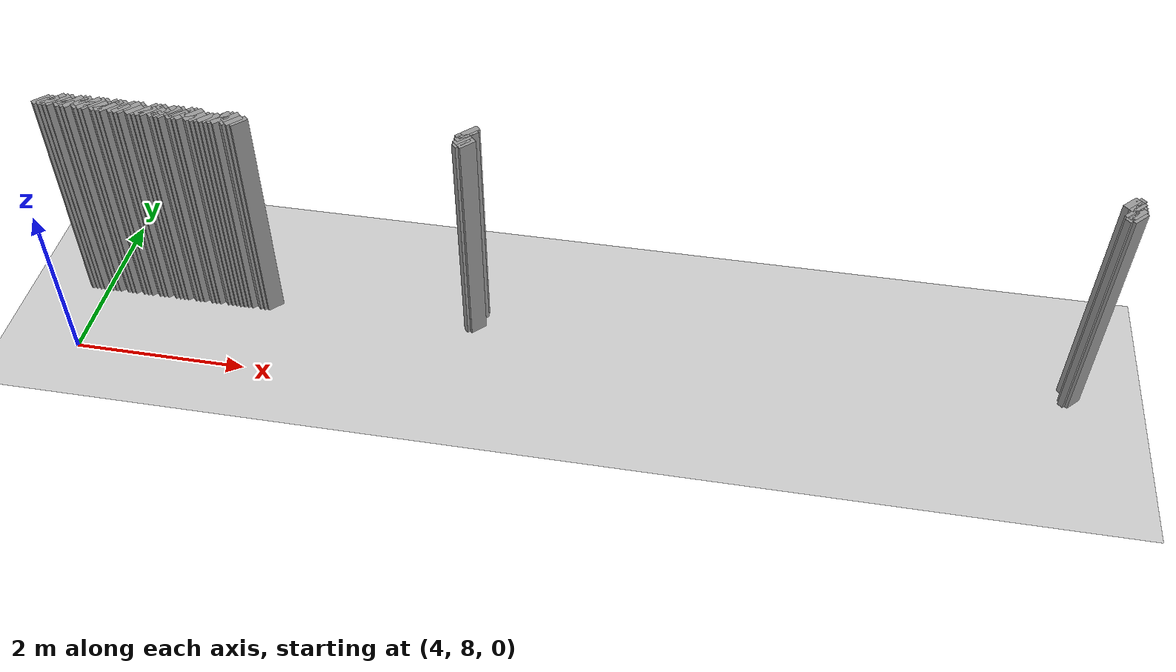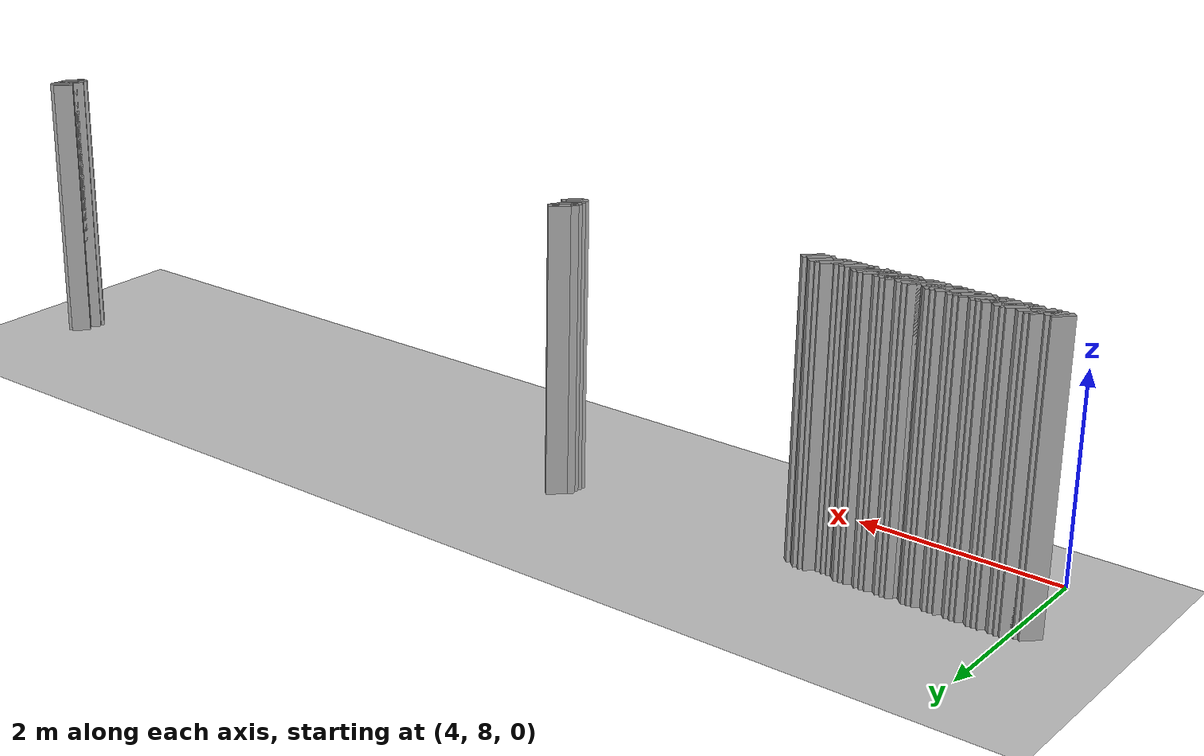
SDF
<sdf version="1.5">
 <world name="default">
  <include><uri>model://ground_plane</uri></include>
  <include><uri>model://sun</uri></include>
  <model name="grey_wall_1089">
   <static>1</static>
   <link name="link">
    <pose>8.5 9.25  1.4 0 0 -0.785398163397</pose>
    <collision name="collision"><geometry><box><size>0.0707106781187 .2  2.8</size></box></geometry></collision>
    <visual name="visual">
     <cast_shadows>0</cast_shadows>
     <geometry><box><size>0.0707106781187 .2  2.8</size></box></geometry>
     <material>
      <script>
       <uri>model://grey_wall/materials/scripts</uri>
       <uri>model://grey_wall/materials/textures</uri>
       <name>vrc/grey_wall</name>
      </script>
     </material>
    </visual>
   </link>
  </model>
  <model name="grey_wall_1090">
   <static>1</static>
   <link name="link">
    <pose>15.2 9.25  1.4 0 0 -0.785398163397</pose>
    <collision name="collision"><geometry><box><size>0.0707106781187 .2  2.8</size></box></geometry></collision>
    <visual name="visual">
     <cast_shadows>0</cast_shadows>
     <geometry><box><size>0.0707106781187 .2  2.8</size></box></geometry>
     <material>
      <script>
       <uri>model://grey_wall/materials/scripts</uri>
       <uri>model://grey_wall/materials/textures</uri>
       <name>vrc/grey_wall</name>
      </script>
     </material>
    </visual>
   </link>
  </model>
  <model name="grey_wall_1091">
   <static>1</static>
   <link name="link">
    <pose>15.25 9.25  1.4 0 0 -0.785398163397</pose>
    <collision name="collision"><geometry><box><size>0.0707106781187 .2  2.8</size></box></geometry></collision>
    <visual name="visual">
     <cast_shadows>0</cast_shadows>
     <geometry><box><size>0.0707106781187 .2  2.8</size></box></geometry>
     <material>
      <script>
       <uri>model://grey_wall/materials/scripts</uri>
       <uri>model://grey_wall/materials/textures</uri>
       <name>vrc/grey_wall</name>
      </script>
     </material>
    </visual>
   </link>
  </model>
  <model name="grey_wall_1092">
   <static>1</static>
   <link name="link">
    <pose>8.45 9.2  1.4 0 0 -0.785398163397</pose>
    <collision name="collision"><geometry><box><size>0.0707106781187 .2  2.8</size></box></geometry></collision>
    <visual name="visual">
     <cast_shadows>0</cast_shadows>
     <geometry><box><size>0.0707106781187 .2  2.8</size></box></geometry>
     <material>
      <script>
       <uri>model://grey_wall/materials/scripts</uri>
       <uri>model://grey_wall/materials/textures</uri>
       <name>vrc/grey_wall</name>
      </script>
     </material>
    </visual>
   </link>
  </model>
  <model name="grey_wall_1093">
   <static>1</static>
   <link name="link">
    <pose>8.5 9.2  1.4 0 0 -0.785398163397</pose>
    <collision name="collision"><geometry><box><size>0.0707106781187 .2  2.8</size></box></geometry></collision>
    <visual name="visual">
     <cast_shadows>0</cast_shadows>
     <geometry><box><size>0.0707106781187 .2  2.8</size></box></geometry>
     <material>
      <script>
       <uri>model://grey_wall/materials/scripts</uri>
       <uri>model://grey_wall/materials/textures</uri>
       <name>vrc/grey_wall</name>
      </script>
     </material>
    </visual>
   </link>
  </model>
  <model name="grey_wall_1094">
   <static>1</static>
   <link name="link">
    <pose>15.25 9.2  1.4 0 0 -0.785398163397</pose>
    <collision name="collision"><geometry><box><size>0.0707106781187 .2  2.8</size></box></geometry></collision>
    <visual name="visual">
     <cast_shadows>0</cast_shadows>
     <geometry><box><size>0.0707106781187 .2  2.8</size></box></geometry>
     <material>
      <script>
       <uri>model://grey_wall/materials/scripts</uri>
       <uri>model://grey_wall/materials/textures</uri>
       <name>vrc/grey_wall</name>
      </script>
     </material>
    </visual>
   </link>
  </model>
  <model name="grey_wall_1095">
   <static>1</static>
   <link name="link">
    <pose>8.45 9.15  1.4 0 0 -0.785398163397</pose>
    <collision name="collision"><geometry><box><size>0.0707106781187 .2  2.8</size></box></geometry></collision>
    <visual name="visual">
     <cast_shadows>0</cast_shadows>
     <geometry><box><size>0.0707106781187 .2  2.8</size></box></geometry>
     <material>
      <script>
       <uri>model://grey_wall/materials/scripts</uri>
       <uri>model://grey_wall/materials/textures</uri>
       <name>vrc/grey_wall</name>
      </script>
     </material>
    </visual>
   </link>
  </model>
  <model name="grey_wall_1096">
   <static>1</static>
   <link name="link">
    <pose>15.25 9.15  1.4 0 0 -0.785398163397</pose>
    <collision name="collision"><geometry><box><size>0.0707106781187 .2  2.8</size></box></geometry></collision>
    <visual name="visual">
     <cast_shadows>0</cast_shadows>
     <geometry><box><size>0.0707106781187 .2  2.8</size></box></geometry>
     <material>
      <script>
       <uri>model://grey_wall/materials/scripts</uri>
       <uri>model://grey_wall/materials/textures</uri>
       <name>vrc/grey_wall</name>
      </script>
     </material>
    </visual>
   </link>
  </model>
  <model name="grey_wall_1097">
   <static>1</static>
   <link name="link">
    <pose>8.45 9.1  1.4 0 0 -0.785398163397</pose>
    <collision name="collision"><geometry><box><size>0.0707106781187 .2  2.8</size></box></geometry></collision>
    <visual name="visual">
     <cast_shadows>0</cast_shadows>
     <geometry><box><size>0.0707106781187 .2  2.8</size></box></geometry>
     <material>
      <script>
       <uri>model://grey_wall/materials/scripts</uri>
       <uri>model://grey_wall/materials/textures</uri>
       <name>vrc/grey_wall</name>
      </script>
     </material>
    </visual>
   </link>
  </model>
  <model name="grey_wall_1098">
   <static>1</static>
   <link name="link">
    <pose>15.2 9.1  1.4 0 0 -0.785398163397</pose>
    <collision name="collision"><geometry><box><size>0.0707106781187 .2  2.8</size></box></geometry></collision>
    <visual name="visual">
     <cast_shadows>0</cast_shadows>
     <geometry><box><size>0.0707106781187 .2  2.8</size></box></geometry>
     <material>
      <script>
       <uri>model://grey_wall/materials/scripts</uri>
       <uri>model://grey_wall/materials/textures</uri>
       <name>vrc/grey_wall</name>
      </script>
     </material>
    </visual>
   </link>
  </model>
  <model name="grey_wall_1099">
   <static>1</static>
   <link name="link">
    <pose>15.25 9.1  1.4 0 0 -0.785398163397</pose>
    <collision name="collision"><geometry><box><size>0.0707106781187 .2  2.8</size></box></geometry></collision>
    <visual name="visual">
     <cast_shadows>0</cast_shadows>
     <geometry><box><size>0.0707106781187 .2  2.8</size></box></geometry>
     <material>
      <script>
       <uri>model://grey_wall/materials/scripts</uri>
       <uri>model://grey_wall/materials/textures</uri>
       <name>vrc/grey_wall</name>
      </script>
     </material>
    </visual>
   </link>
  </model>
  <model name="grey_wall_1100">
   <static>1</static>
   <link name="link">
    <pose>4.0 9.05  1.4 0 0 -0.785398163397</pose>
    <collision name="collision"><geometry><box><size>0.0707106781187 .2  2.8</size></box></geometry></collision>
    <visual name="visual">
     <cast_shadows>0</cast_shadows>
     <geometry><box><size>0.0707106781187 .2  2.8</size></box></geometry>
     <material>
      <script>
       <uri>model://grey_wall/materials/scripts</uri>
       <uri>model://grey_wall/materials/textures</uri>
       <name>vrc/grey_wall</name>
      </script>
     </material>
    </visual>
   </link>
  </model>
  <model name="grey_wall_1101">
   <static>1</static>
   <link name="link">
    <pose>4.05 9.05  1.4 0 0 -0.785398163397</pose>
    <collision name="collision"><geometry><box><size>0.0707106781187 .2  2.8</size></box></geometry></collision>
    <visual name="visual">
     <cast_shadows>0</cast_shadows>
     <geometry><box><size>0.0707106781187 .2  2.8</size></box></geometry>
     <material>
      <script>
       <uri>model://grey_wall/materials/scripts</uri>
       <uri>model://grey_wall/materials/textures</uri>
       <name>vrc/grey_wall</name>
      </script>
     </material>
    </visual>
   </link>
  </model>
  <model name="grey_wall_1102">
   <static>1</static>
   <link name="link">
    <pose>4.1 9.05  1.4 0 0 -0.785398163397</pose>
    <collision name="collision"><geometry><box><size>0.0707106781187 .2  2.8</size></box></geometry></collision>
    <visual name="visual">
     <cast_shadows>0</cast_shadows>
     <geometry><box><size>0.0707106781187 .2  2.8</size></box></geometry>
     <material>
      <script>
       <uri>model://grey_wall/materials/scripts</uri>
       <uri>model://grey_wall/materials/textures</uri>
       <name>vrc/grey_wall</name>
      </script>
     </material>
    </visual>
   </link>
  </model>
  <model name="grey_wall_1103">
   <static>1</static>
   <link name="link">
    <pose>4.2 9.05  1.4 0 0 -0.785398163397</pose>
    <collision name="collision"><geometry><box><size>0.0707106781187 .2  2.8</size></box></geometry></collision>
    <visual name="visual">
     <cast_shadows>0</cast_shadows>
     <geometry><box><size>0.0707106781187 .2  2.8</size></box></geometry>
     <material>
      <script>
       <uri>model://grey_wall/materials/scripts</uri>
       <uri>model://grey_wall/materials/textures</uri>
       <name>vrc/grey_wall</name>
      </script>
     </material>
    </visual>
   </link>
  </model>
  <model name="grey_wall_1104">
   <static>1</static>
   <link name="link">
    <pose>4.25 9.05  1.4 0 0 -0.785398163397</pose>
    <collision name="collision"><geometry><box><size>0.0707106781187 .2  2.8</size></box></geometry></collision>
    <visual name="visual">
     <cast_shadows>0</cast_shadows>
     <geometry><box><size>0.0707106781187 .2  2.8</size></box></geometry>
     <material>
      <script>
       <uri>model://grey_wall/materials/scripts</uri>
       <uri>model://grey_wall/materials/textures</uri>
       <name>vrc/grey_wall</name>
      </script>
     </material>
    </visual>
   </link>
  </model>
  <model name="grey_wall_1105">
   <static>1</static>
   <link name="link">
    <pose>4.3 9.05  1.4 0 0 -0.785398163397</pose>
    <collision name="collision"><geometry><box><size>0.0707106781187 .2  2.8</size></box></geometry></collision>
    <visual name="visual">
     <cast_shadows>0</cast_shadows>
     <geometry><box><size>0.0707106781187 .2  2.8</size></box></geometry>
     <material>
      <script>
       <uri>model://grey_wall/materials/scripts</uri>
       <uri>model://grey_wall/materials/textures</uri>
       <name>vrc/grey_wall</name>
      </script>
     </material>
    </visual>
   </link>
  </model>
  <model name="grey_wall_1106">
   <static>1</static>
   <link name="link">
    <pose>4.4 9.05  1.4 0 0 -0.785398163397</pose>
    <collision name="collision"><geometry><box><size>0.0707106781187 .2  2.8</size></box></geometry></collision>
    <visual name="visual">
     <cast_shadows>0</cast_shadows>
     <geometry><box><size>0.0707106781187 .2  2.8</size></box></geometry>
     <material>
      <script>
       <uri>model://grey_wall/materials/scripts</uri>
       <uri>model://grey_wall/materials/textures</uri>
       <name>vrc/grey_wall</name>
      </script>
     </material>
    </visual>
   </link>
  </model>
  <model name="grey_wall_1107">
   <static>1</static>
   <link name="link">
    <pose>4.45 9.05  1.4 0 0 -0.785398163397</pose>
    <collision name="collision"><geometry><box><size>0.0707106781187 .2  2.8</size></box></geometry></collision>
    <visual name="visual">
     <cast_shadows>0</cast_shadows>
     <geometry><box><size>0.0707106781187 .2  2.8</size></box></geometry>
     <material>
      <script>
       <uri>model://grey_wall/materials/scripts</uri>
       <uri>model://grey_wall/materials/textures</uri>
       <name>vrc/grey_wall</name>
      </script>
     </material>
    </visual>
   </link>
  </model>
  <model name="grey_wall_1108">
   <static>1</static>
   <link name="link">
    <pose>4.5 9.05  1.4 0 0 -0.785398163397</pose>
    <collision name="collision"><geometry><box><size>0.0707106781187 .2  2.8</size></box></geometry></collision>
    <visual name="visual">
     <cast_shadows>0</cast_shadows>
     <geometry><box><size>0.0707106781187 .2  2.8</size></box></geometry>
     <material>
      <script>
       <uri>model://grey_wall/materials/scripts</uri>
       <uri>model://grey_wall/materials/textures</uri>
       <name>vrc/grey_wall</name>
      </script>
     </material>
    </visual>
   </link>
  </model>
  <model name="grey_wall_1109">
   <static>1</static>
   <link name="link">
    <pose>4.6 9.05  1.4 0 0 -0.785398163397</pose>
    <collision name="collision"><geometry><box><size>0.0707106781187 .2  2.8</size></box></geometry></collision>
    <visual name="visual">
     <cast_shadows>0</cast_shadows>
     <geometry><box><size>0.0707106781187 .2  2.8</size></box></geometry>
     <material>
      <script>
       <uri>model://grey_wall/materials/scripts</uri>
       <uri>model://grey_wall/materials/textures</uri>
       <name>vrc/grey_wall</name>
      </script>
     </material>
    </visual>
   </link>
  </model>
  <model name="grey_wall_1110">
   <static>1</static>
   <link name="link">
    <pose>4.65 9.05  1.4 0 0 -0.785398163397</pose>
    <collision name="collision"><geometry><box><size>0.0707106781187 .2  2.8</size></box></geometry></collision>
    <visual name="visual">
     <cast_shadows>0</cast_shadows>
     <geometry><box><size>0.0707106781187 .2  2.8</size></box></geometry>
     <material>
      <script>
       <uri>model://grey_wall/materials/scripts</uri>
       <uri>model://grey_wall/materials/textures</uri>
       <name>vrc/grey_wall</name>
      </script>
     </material>
    </visual>
   </link>
  </model>
  <model name="grey_wall_1111">
   <static>1</static>
   <link name="link">
    <pose>4.7 9.05  1.4 0 0 -0.785398163397</pose>
    <collision name="collision"><geometry><box><size>0.0707106781187 .2  2.8</size></box></geometry></collision>
    <visual name="visual">
     <cast_shadows>0</cast_shadows>
     <geometry><box><size>0.0707106781187 .2  2.8</size></box></geometry>
     <material>
      <script>
       <uri>model://grey_wall/materials/scripts</uri>
       <uri>model://grey_wall/materials/textures</uri>
       <name>vrc/grey_wall</name>
      </script>
     </material>
    </visual>
   </link>
  </model>
  <model name="grey_wall_1112">
   <static>1</static>
   <link name="link">
    <pose>4.8 9.05  1.4 0 0 -0.785398163397</pose>
    <collision name="collision"><geometry><box><size>0.0707106781187 .2  2.8</size></box></geometry></collision>
    <visual name="visual">
     <cast_shadows>0</cast_shadows>
     <geometry><box><size>0.0707106781187 .2  2.8</size></box></geometry>
     <material>
      <script>
       <uri>model://grey_wall/materials/scripts</uri>
       <uri>model://grey_wall/materials/textures</uri>
       <name>vrc/grey_wall</name>
      </script>
     </material>
    </visual>
   </link>
  </model>
  <model name="grey_wall_1113">
   <static>1</static>
   <link name="link">
    <pose>4.85 9.05  1.4 0 0 -0.785398163397</pose>
    <collision name="collision"><geometry><box><size>0.0707106781187 .2  2.8</size></box></geometry></collision>
    <visual name="visual">
     <cast_shadows>0</cast_shadows>
     <geometry><box><size>0.0707106781187 .2  2.8</size></box></geometry>
     <material>
      <script>
       <uri>model://grey_wall/materials/scripts</uri>
       <uri>model://grey_wall/materials/textures</uri>
       <name>vrc/grey_wall</name>
      </script>
     </material>
    </visual>
   </link>
  </model>
  <model name="grey_wall_1114">
   <static>1</static>
   <link name="link">
    <pose>4.9 9.05  1.4 0 0 -0.785398163397</pose>
    <collision name="collision"><geometry><box><size>0.0707106781187 .2  2.8</size></box></geometry></collision>
    <visual name="visual">
     <cast_shadows>0</cast_shadows>
     <geometry><box><size>0.0707106781187 .2  2.8</size></box></geometry>
     <material>
      <script>
       <uri>model://grey_wall/materials/scripts</uri>
       <uri>model://grey_wall/materials/textures</uri>
       <name>vrc/grey_wall</name>
      </script>
     </material>
    </visual>
   </link>
  </model>
  <model name="grey_wall_1115">
   <static>1</static>
   <link name="link">
    <pose>5.05 9.05  1.4 0 0 -0.785398163397</pose>
    <collision name="collision"><geometry><box><size>0.0707106781187 .2  2.8</size></box></geometry></collision>
    <visual name="visual">
     <cast_shadows>0</cast_shadows>
     <geometry><box><size>0.0707106781187 .2  2.8</size></box></geometry>
     <material>
      <script>
       <uri>model://grey_wall/materials/scripts</uri>
       <uri>model://grey_wall/materials/textures</uri>
       <name>vrc/grey_wall</name>
      </script>
     </material>
    </visual>
   </link>
  </model>
  <model name="grey_wall_1116">
   <static>1</static>
   <link name="link">
    <pose>5.1 9.05  1.4 0 0 -0.785398163397</pose>
    <collision name="collision"><geometry><box><size>0.0707106781187 .2  2.8</size></box></geometry></collision>
    <visual name="visual">
     <cast_shadows>0</cast_shadows>
     <geometry><box><size>0.0707106781187 .2  2.8</size></box></geometry>
     <material>
      <script>
       <uri>model://grey_wall/materials/scripts</uri>
       <uri>model://grey_wall/materials/textures</uri>
       <name>vrc/grey_wall</name>
      </script>
     </material>
    </visual>
   </link>
  </model>
  <model name="grey_wall_1117">
   <static>1</static>
   <link name="link">
    <pose>5.15 9.05  1.4 0 0 -0.785398163397</pose>
    <collision name="collision"><geometry><box><size>0.0707106781187 .2  2.8</size></box></geometry></collision>
    <visual name="visual">
     <cast_shadows>0</cast_shadows>
     <geometry><box><size>0.0707106781187 .2  2.8</size></box></geometry>
     <material>
      <script>
       <uri>model://grey_wall/materials/scripts</uri>
       <uri>model://grey_wall/materials/textures</uri>
       <name>vrc/grey_wall</name>
      </script>
     </material>
    </visual>
   </link>
  </model>
  <model name="grey_wall_1118">
   <static>1</static>
   <link name="link">
    <pose>5.25 9.05  1.4 0 0 -0.785398163397</pose>
    <collision name="collision"><geometry><box><size>0.0707106781187 .2  2.8</size></box></geometry></collision>
    <visual name="visual">
     <cast_shadows>0</cast_shadows>
     <geometry><box><size>0.0707106781187 .2  2.8</size></box></geometry>
     <material>
      <script>
       <uri>model://grey_wall/materials/scripts</uri>
       <uri>model://grey_wall/materials/textures</uri>
       <name>vrc/grey_wall</name>
      </script>
     </material>
    </visual>
   </link>
  </model>
  <model name="grey_wall_1119">
   <static>1</static>
   <link name="link">
    <pose>5.3 9.05  1.4 0 0 -0.785398163397</pose>
    <collision name="collision"><geometry><box><size>0.0707106781187 .2  2.8</size></box></geometry></collision>
    <visual name="visual">
     <cast_shadows>0</cast_shadows>
     <geometry><box><size>0.0707106781187 .2  2.8</size></box></geometry>
     <material>
      <script>
       <uri>model://grey_wall/materials/scripts</uri>
       <uri>model://grey_wall/materials/textures</uri>
       <name>vrc/grey_wall</name>
      </script>
     </material>
    </visual>
   </link>
  </model>
  <model name="grey_wall_1120">
   <static>1</static>
   <link name="link">
    <pose>5.35 9.05  1.4 0 0 -0.785398163397</pose>
    <collision name="collision"><geometry><box><size>0.0707106781187 .2  2.8</size></box></geometry></collision>
    <visual name="visual">
     <cast_shadows>0</cast_shadows>
     <geometry><box><size>0.0707106781187 .2  2.8</size></box></geometry>
     <material>
      <script>
       <uri>model://grey_wall/materials/scripts</uri>
       <uri>model://grey_wall/materials/textures</uri>
       <name>vrc/grey_wall</name>
      </script>
     </material>
    </visual>
   </link>
  </model>
  <model name="grey_wall_1121">
   <static>1</static>
   <link name="link">
    <pose>5.45 9.05  1.4 0 0 -0.785398163397</pose>
    <collision name="collision"><geometry><box><size>0.0707106781187 .2  2.8</size></box></geometry></collision>
    <visual name="visual">
     <cast_shadows>0</cast_shadows>
     <geometry><box><size>0.0707106781187 .2  2.8</size></box></geometry>
     <material>
      <script>
       <uri>model://grey_wall/materials/scripts</uri>
       <uri>model://grey_wall/materials/textures</uri>
       <name>vrc/grey_wall</name>
      </script>
     </material>
    </visual>
   </link>
  </model>
  <model name="grey_wall_1122">
   <static>1</static>
   <link name="link">
    <pose>5.5 9.05  1.4 0 0 -0.785398163397</pose>
    <collision name="collision"><geometry><box><size>0.0707106781187 .2  2.8</size></box></geometry></collision>
    <visual name="visual">
     <cast_shadows>0</cast_shadows>
     <geometry><box><size>0.0707106781187 .2  2.8</size></box></geometry>
     <material>
      <script>
       <uri>model://grey_wall/materials/scripts</uri>
       <uri>model://grey_wall/materials/textures</uri>
       <name>vrc/grey_wall</name>
      </script>
     </material>
    </visual>
   </link>
  </model>
  <model name="grey_wall_1123">
   <static>1</static>
   <link name="link">
    <pose>5.55 9.05  1.4 0 0 -0.785398163397</pose>
    <collision name="collision"><geometry><box><size>0.0707106781187 .2  2.8</size></box></geometry></collision>
    <visual name="visual">
     <cast_shadows>0</cast_shadows>
     <geometry><box><size>0.0707106781187 .2  2.8</size></box></geometry>
     <material>
      <script>
       <uri>model://grey_wall/materials/scripts</uri>
       <uri>model://grey_wall/materials/textures</uri>
       <name>vrc/grey_wall</name>
      </script>
     </material>
    </visual>
   </link>
  </model>
  <model name="grey_wall_1124">
   <static>1</static>
   <link name="link">
    <pose>5.85 9.05  1.4 0 0 -0.785398163397</pose>
    <collision name="collision"><geometry><box><size>0.0707106781187 .2  2.8</size></box></geometry></collision>
    <visual name="visual">
     <cast_shadows>0</cast_shadows>
     <geometry><box><size>0.0707106781187 .2  2.8</size></box></geometry>
     <material>
      <script>
       <uri>model://grey_wall/materials/scripts</uri>
       <uri>model://grey_wall/materials/textures</uri>
       <name>vrc/grey_wall</name>
      </script>
     </material>
    </visual>
   </link>
  </model>
  <model name="grey_wall_1125">
   <static>1</static>
   <link name="link">
    <pose>5.9 9.05  1.4 0 0 -0.785398163397</pose>
    <collision name="collision"><geometry><box><size>0.0707106781187 .2  2.8</size></box></geometry></collision>
    <visual name="visual">
     <cast_shadows>0</cast_shadows>
     <geometry><box><size>0.0707106781187 .2  2.8</size></box></geometry>
     <material>
      <script>
       <uri>model://grey_wall/materials/scripts</uri>
       <uri>model://grey_wall/materials/textures</uri>
       <name>vrc/grey_wall</name>
      </script>
     </material>
    </visual>
   </link>
  </model>
  <model name="grey_wall_1126">
   <static>1</static>
   <link name="link">
    <pose>5.95 9.05  1.4 0 0 -0.785398163397</pose>
    <collision name="collision"><geometry><box><size>0.0707106781187 .2  2.8</size></box></geometry></collision>
    <visual name="visual">
     <cast_shadows>0</cast_shadows>
     <geometry><box><size>0.0707106781187 .2  2.8</size></box></geometry>
     <material>
      <script>
       <uri>model://grey_wall/materials/scripts</uri>
       <uri>model://grey_wall/materials/textures</uri>
       <name>vrc/grey_wall</name>
      </script>
     </material>
    </visual>
   </link>
  </model>
  <model name="grey_wall_1127">
   <static>1</static>
   <link name="link">
    <pose>8.45 9.05  1.4 0 0 -0.785398163397</pose>
    <collision name="collision"><geometry><box><size>0.0707106781187 .2  2.8</size></box></geometry></collision>
    <visual name="visual">
     <cast_shadows>0</cast_shadows>
     <geometry><box><size>0.0707106781187 .2  2.8</size></box></geometry>
     <material>
      <script>
       <uri>model://grey_wall/materials/scripts</uri>
       <uri>model://grey_wall/materials/textures</uri>
       <name>vrc/grey_wall</name>
      </script>
     </material>
    </visual>
   </link>
  </model>
  <model name="grey_wall_1128">
   <static>1</static>
   <link name="link">
    <pose>8.5 9.05  1.4 0 0 -0.785398163397</pose>
    <collision name="collision"><geometry><box><size>0.0707106781187 .2  2.8</size></box></geometry></collision>
    <visual name="visual">
     <cast_shadows>0</cast_shadows>
     <geometry><box><size>0.0707106781187 .2  2.8</size></box></geometry>
     <material>
      <script>
       <uri>model://grey_wall/materials/scripts</uri>
       <uri>model://grey_wall/materials/textures</uri>
       <name>vrc/grey_wall</name>
      </script>
     </material>
    </visual>
   </link>
  </model>
  <model name="grey_wall_1129">
   <static>1</static>
   <link name="link">
    <pose>15.2 9.05  1.4 0 0 -0.785398163397</pose>
    <collision name="collision"><geometry><box><size>0.0707106781187 .2  2.8</size></box></geometry></collision>
    <visual name="visual">
     <cast_shadows>0</cast_shadows>
     <geometry><box><size>0.0707106781187 .2  2.8</size></box></geometry>
     <material>
      <script>
       <uri>model://grey_wall/materials/scripts</uri>
       <uri>model://grey_wall/materials/textures</uri>
       <name>vrc/grey_wall</name>
      </script>
     </material>
    </visual>
   </link>
  </model>
  <model name="grey_wall_1130">
   <static>1</static>
   <link name="link">
    <pose>15.25 9.05  1.4 0 0 -0.785398163397</pose>
    <collision name="collision"><geometry><box><size>0.0707106781187 .2  2.8</size></box></geometry></collision>
    <visual name="visual">
     <cast_shadows>0</cast_shadows>
     <geometry><box><size>0.0707106781187 .2  2.8</size></box></geometry>
     <material>
      <script>
       <uri>model://grey_wall/materials/scripts</uri>
       <uri>model://grey_wall/materials/textures</uri>
       <name>vrc/grey_wall</name>
      </script>
     </material>
    </visual>
   </link>
  </model>
  <model name="grey_wall_1131">
   <static>1</static>
   <link name="link">
    <pose>3.85 9.0  1.4 0 0 -0.785398163397</pose>
    <collision name="collision"><geometry><box><size>0.0707106781187 .2  2.8</size></box></geometry></collision>
    <visual name="visual">
     <cast_shadows>0</cast_shadows>
     <geometry><box><size>0.0707106781187 .2  2.8</size></box></geometry>
     <material>
      <script>
       <uri>model://grey_wall/materials/scripts</uri>
       <uri>model://grey_wall/materials/textures</uri>
       <name>vrc/grey_wall</name>
      </script>
     </material>
    </visual>
   </link>
  </model>
  <model name="grey_wall_1132">
   <static>1</static>
   <link name="link">
    <pose>3.9 9.0  1.4 0 0 -0.785398163397</pose>
    <collision name="collision"><geometry><box><size>0.0707106781187 .2  2.8</size></box></geometry></collision>
    <visual name="visual">
     <cast_shadows>0</cast_shadows>
     <geometry><box><size>0.0707106781187 .2  2.8</size></box></geometry>
     <material>
      <script>
       <uri>model://grey_wall/materials/scripts</uri>
       <uri>model://grey_wall/materials/textures</uri>
       <name>vrc/grey_wall</name>
      </script>
     </material>
    </visual>
   </link>
  </model>
  <model name="grey_wall_1133">
   <static>1</static>
   <link name="link">
    <pose>3.95 9.0  1.4 0 0 -0.785398163397</pose>
    <collision name="collision"><geometry><box><size>0.0707106781187 .2  2.8</size></box></geometry></collision>
    <visual name="visual">
     <cast_shadows>0</cast_shadows>
     <geometry><box><size>0.0707106781187 .2  2.8</size></box></geometry>
     <material>
      <script>
       <uri>model://grey_wall/materials/scripts</uri>
       <uri>model://grey_wall/materials/textures</uri>
       <name>vrc/grey_wall</name>
      </script>
     </material>
    </visual>
   </link>
  </model>
  <model name="grey_wall_1134">
   <static>1</static>
   <link name="link">
    <pose>4.0 9.0  1.4 0 0 -0.785398163397</pose>
    <collision name="collision"><geometry><box><size>0.0707106781187 .2  2.8</size></box></geometry></collision>
    <visual name="visual">
     <cast_shadows>0</cast_shadows>
     <geometry><box><size>0.0707106781187 .2  2.8</size></box></geometry>
     <material>
      <script>
       <uri>model://grey_wall/materials/scripts</uri>
       <uri>model://grey_wall/materials/textures</uri>
       <name>vrc/grey_wall</name>
      </script>
     </material>
    </visual>
   </link>
  </model>
  <model name="grey_wall_1135">
   <static>1</static>
   <link name="link">
    <pose>4.1 9.0  1.4 0 0 -0.785398163397</pose>
    <collision name="collision"><geometry><box><size>0.0707106781187 .2  2.8</size></box></geometry></collision>
    <visual name="visual">
     <cast_shadows>0</cast_shadows>
     <geometry><box><size>0.0707106781187 .2  2.8</size></box></geometry>
     <material>
      <script>
       <uri>model://grey_wall/materials/scripts</uri>
       <uri>model://grey_wall/materials/textures</uri>
       <name>vrc/grey_wall</name>
      </script>
     </material>
    </visual>
   </link>
  </model>
  <model name="grey_wall_1136">
   <static>1</static>
   <link name="link">
    <pose>4.15 9.0  1.4 0 0 -0.785398163397</pose>
    <collision name="collision"><geometry><box><size>0.0707106781187 .2  2.8</size></box></geometry></collision>
    <visual name="visual">
     <cast_shadows>0</cast_shadows>
     <geometry><box><size>0.0707106781187 .2  2.8</size></box></geometry>
     <material>
      <script>
       <uri>model://grey_wall/materials/scripts</uri>
       <uri>model://grey_wall/materials/textures</uri>
       <name>vrc/grey_wall</name>
      </script>
     </material>
    </visual>
   </link>
  </model>
  <model name="grey_wall_1137">
   <static>1</static>
   <link name="link">
    <pose>4.2 9.0  1.4 0 0 -0.785398163397</pose>
    <collision name="collision"><geometry><box><size>0.0707106781187 .2  2.8</size></box></geometry></collision>
    <visual name="visual">
     <cast_shadows>0</cast_shadows>
     <geometry><box><size>0.0707106781187 .2  2.8</size></box></geometry>
     <material>
      <script>
       <uri>model://grey_wall/materials/scripts</uri>
       <uri>model://grey_wall/materials/textures</uri>
       <name>vrc/grey_wall</name>
      </script>
     </material>
    </visual>
   </link>
  </model>
  <model name="grey_wall_1138">
   <static>1</static>
   <link name="link">
    <pose>4.3 9.0  1.4 0 0 -0.785398163397</pose>
    <collision name="collision"><geometry><box><size>0.0707106781187 .2  2.8</size></box></geometry></collision>
    <visual name="visual">
     <cast_shadows>0</cast_shadows>
     <geometry><box><size>0.0707106781187 .2  2.8</size></box></geometry>
     <material>
      <script>
       <uri>model://grey_wall/materials/scripts</uri>
       <uri>model://grey_wall/materials/textures</uri>
       <name>vrc/grey_wall</name>
      </script>
     </material>
    </visual>
   </link>
  </model>
  <model name="grey_wall_1139">
   <static>1</static>
   <link name="link">
    <pose>4.35 9.0  1.4 0 0 -0.785398163397</pose>
    <collision name="collision"><geometry><box><size>0.0707106781187 .2  2.8</size></box></geometry></collision>
    <visual name="visual">
     <cast_shadows>0</cast_shadows>
     <geometry><box><size>0.0707106781187 .2  2.8</size></box></geometry>
     <material>
      <script>
       <uri>model://grey_wall/materials/scripts</uri>
       <uri>model://grey_wall/materials/textures</uri>
       <name>vrc/grey_wall</name>
      </script>
     </material>
    </visual>
   </link>
  </model>
  <model name="grey_wall_1140">
   <static>1</static>
   <link name="link">
    <pose>4.4 9.0  1.4 0 0 -0.785398163397</pose>
    <collision name="collision"><geometry><box><size>0.0707106781187 .2  2.8</size></box></geometry></collision>
    <visual name="visual">
     <cast_shadows>0</cast_shadows>
     <geometry><box><size>0.0707106781187 .2  2.8</size></box></geometry>
     <material>
      <script>
       <uri>model://grey_wall/materials/scripts</uri>
       <uri>model://grey_wall/materials/textures</uri>
       <name>vrc/grey_wall</name>
      </script>
     </material>
    </visual>
   </link>
  </model>
  <model name="grey_wall_1141">
   <static>1</static>
   <link name="link">
    <pose>4.5 9.0  1.4 0 0 -0.785398163397</pose>
    <collision name="collision"><geometry><box><size>0.0707106781187 .2  2.8</size></box></geometry></collision>
    <visual name="visual">
     <cast_shadows>0</cast_shadows>
     <geometry><box><size>0.0707106781187 .2  2.8</size></box></geometry>
     <material>
      <script>
       <uri>model://grey_wall/materials/scripts</uri>
       <uri>model://grey_wall/materials/textures</uri>
       <name>vrc/grey_wall</name>
      </script>
     </material>
    </visual>
   </link>
  </model>
  <model name="grey_wall_1142">
   <static>1</static>
   <link name="link">
    <pose>4.55 9.0  1.4 0 0 -0.785398163397</pose>
    <collision name="collision"><geometry><box><size>0.0707106781187 .2  2.8</size></box></geometry></collision>
    <visual name="visual">
     <cast_shadows>0</cast_shadows>
     <geometry><box><size>0.0707106781187 .2  2.8</size></box></geometry>
     <material>
      <script>
       <uri>model://grey_wall/materials/scripts</uri>
       <uri>model://grey_wall/materials/textures</uri>
       <name>vrc/grey_wall</name>
      </script>
     </material>
    </visual>
   </link>
  </model>
  <model name="grey_wall_1143">
   <static>1</static>
   <link name="link">
    <pose>4.6 9.0  1.4 0 0 -0.785398163397</pose>
    <collision name="collision"><geometry><box><size>0.0707106781187 .2  2.8</size></box></geometry></collision>
    <visual name="visual">
     <cast_shadows>0</cast_shadows>
     <geometry><box><size>0.0707106781187 .2  2.8</size></box></geometry>
     <material>
      <script>
       <uri>model://grey_wall/materials/scripts</uri>
       <uri>model://grey_wall/materials/textures</uri>
       <name>vrc/grey_wall</name>
      </script>
     </material>
    </visual>
   </link>
  </model>
  <model name="grey_wall_1144">
   <static>1</static>
   <link name="link">
    <pose>4.7 9.0  1.4 0 0 -0.785398163397</pose>
    <collision name="collision"><geometry><box><size>0.0707106781187 .2  2.8</size></box></geometry></collision>
    <visual name="visual">
     <cast_shadows>0</cast_shadows>
     <geometry><box><size>0.0707106781187 .2  2.8</size></box></geometry>
     <material>
      <script>
       <uri>model://grey_wall/materials/scripts</uri>
       <uri>model://grey_wall/materials/textures</uri>
       <name>vrc/grey_wall</name>
      </script>
     </material>
    </visual>
   </link>
  </model>
  <model name="grey_wall_1145">
   <static>1</static>
   <link name="link">
    <pose>4.75 9.0  1.4 0 0 -0.785398163397</pose>
    <collision name="collision"><geometry><box><size>0.0707106781187 .2  2.8</size></box></geometry></collision>
    <visual name="visual">
     <cast_shadows>0</cast_shadows>
     <geometry><box><size>0.0707106781187 .2  2.8</size></box></geometry>
     <material>
      <script>
       <uri>model://grey_wall/materials/scripts</uri>
       <uri>model://grey_wall/materials/textures</uri>
       <name>vrc/grey_wall</name>
      </script>
     </material>
    </visual>
   </link>
  </model>
  <model name="grey_wall_1146">
   <static>1</static>
   <link name="link">
    <pose>4.8 9.0  1.4 0 0 -0.785398163397</pose>
    <collision name="collision"><geometry><box><size>0.0707106781187 .2  2.8</size></box></geometry></collision>
    <visual name="visual">
     <cast_shadows>0</cast_shadows>
     <geometry><box><size>0.0707106781187 .2  2.8</size></box></geometry>
     <material>
      <script>
       <uri>model://grey_wall/materials/scripts</uri>
       <uri>model://grey_wall/materials/textures</uri>
       <name>vrc/grey_wall</name>
      </script>
     </material>
    </visual>
   </link>
  </model>
  <model name="grey_wall_1147">
   <static>1</static>
   <link name="link">
    <pose>4.9 9.0  1.4 0 0 -0.785398163397</pose>
    <collision name="collision"><geometry><box><size>0.0707106781187 .2  2.8</size></box></geometry></collision>
    <visual name="visual">
     <cast_shadows>0</cast_shadows>
     <geometry><box><size>0.0707106781187 .2  2.8</size></box></geometry>
     <material>
      <script>
       <uri>model://grey_wall/materials/scripts</uri>
       <uri>model://grey_wall/materials/textures</uri>
       <name>vrc/grey_wall</name>
      </script>
     </material>
    </visual>
   </link>
  </model>
  <model name="grey_wall_1148">
   <static>1</static>
   <link name="link">
    <pose>4.95 9.0  1.4 0 0 -0.785398163397</pose>
    <collision name="collision"><geometry><box><size>0.0707106781187 .2  2.8</size></box></geometry></collision>
    <visual name="visual">
     <cast_shadows>0</cast_shadows>
     <geometry><box><size>0.0707106781187 .2  2.8</size></box></geometry>
     <material>
      <script>
       <uri>model://grey_wall/materials/scripts</uri>
       <uri>model://grey_wall/materials/textures</uri>
       <name>vrc/grey_wall</name>
      </script>
     </material>
    </visual>
   </link>
  </model>
  <model name="grey_wall_1149">
   <static>1</static>
   <link name="link">
    <pose>5.0 9.0  1.4 0 0 -0.785398163397</pose>
    <collision name="collision"><geometry><box><size>0.0707106781187 .2  2.8</size></box></geometry></collision>
    <visual name="visual">
     <cast_shadows>0</cast_shadows>
     <geometry><box><size>0.0707106781187 .2  2.8</size></box></geometry>
     <material>
      <script>
       <uri>model://grey_wall/materials/scripts</uri>
       <uri>model://grey_wall/materials/textures</uri>
       <name>vrc/grey_wall</name>
      </script>
     </material>
    </visual>
   </link>
  </model>
  <model name="grey_wall_1150">
   <static>1</static>
   <link name="link">
    <pose>5.05 9.0  1.4 0 0 -0.785398163397</pose>
    <collision name="collision"><geometry><box><size>0.0707106781187 .2  2.8</size></box></geometry></collision>
    <visual name="visual">
     <cast_shadows>0</cast_shadows>
     <geometry><box><size>0.0707106781187 .2  2.8</size></box></geometry>
     <material>
      <script>
       <uri>model://grey_wall/materials/scripts</uri>
       <uri>model://grey_wall/materials/textures</uri>
       <name>vrc/grey_wall</name>
      </script>
     </material>
    </visual>
   </link>
  </model>
  <model name="grey_wall_1151">
   <static>1</static>
   <link name="link">
    <pose>5.15 9.0  1.4 0 0 -0.785398163397</pose>
    <collision name="collision"><geometry><box><size>0.0707106781187 .2  2.8</size></box></geometry></collision>
    <visual name="visual">
     <cast_shadows>0</cast_shadows>
     <geometry><box><size>0.0707106781187 .2  2.8</size></box></geometry>
     <material>
      <script>
       <uri>model://grey_wall/materials/scripts</uri>
       <uri>model://grey_wall/materials/textures</uri>
       <name>vrc/grey_wall</name>
      </script>
     </material>
    </visual>
   </link>
  </model>
  <model name="grey_wall_1152">
   <static>1</static>
   <link name="link">
    <pose>5.2 9.0  1.4 0 0 -0.785398163397</pose>
    <collision name="collision"><geometry><box><size>0.0707106781187 .2  2.8</size></box></geometry></collision>
    <visual name="visual">
     <cast_shadows>0</cast_shadows>
     <geometry><box><size>0.0707106781187 .2  2.8</size></box></geometry>
     <material>
      <script>
       <uri>model://grey_wall/materials/scripts</uri>
       <uri>model://grey_wall/materials/textures</uri>
       <name>vrc/grey_wall</name>
      </script>
     </material>
    </visual>
   </link>
  </model>
  <model name="grey_wall_1153">
   <static>1</static>
   <link name="link">
    <pose>5.25 9.0  1.4 0 0 -0.785398163397</pose>
    <collision name="collision"><geometry><box><size>0.0707106781187 .2  2.8</size></box></geometry></collision>
    <visual name="visual">
     <cast_shadows>0</cast_shadows>
     <geometry><box><size>0.0707106781187 .2  2.8</size></box></geometry>
     <material>
      <script>
       <uri>model://grey_wall/materials/scripts</uri>
       <uri>model://grey_wall/materials/textures</uri>
       <name>vrc/grey_wall</name>
      </script>
     </material>
    </visual>
   </link>
  </model>
  <model name="grey_wall_1154">
   <static>1</static>
   <link name="link">
    <pose>5.35 9.0  1.4 0 0 -0.785398163397</pose>
    <collision name="collision"><geometry><box><size>0.0707106781187 .2  2.8</size></box></geometry></collision>
    <visual name="visual">
     <cast_shadows>0</cast_shadows>
     <geometry><box><size>0.0707106781187 .2  2.8</size></box></geometry>
     <material>
      <script>
       <uri>model://grey_wall/materials/scripts</uri>
       <uri>model://grey_wall/materials/textures</uri>
       <name>vrc/grey_wall</name>
      </script>
     </material>
    </visual>
   </link>
  </model>
  <model name="grey_wall_1155">
   <static>1</static>
   <link name="link">
    <pose>5.4 9.0  1.4 0 0 -0.785398163397</pose>
    <collision name="collision"><geometry><box><size>0.0707106781187 .2  2.8</size></box></geometry></collision>
    <visual name="visual">
     <cast_shadows>0</cast_shadows>
     <geometry><box><size>0.0707106781187 .2  2.8</size></box></geometry>
     <material>
      <script>
       <uri>model://grey_wall/materials/scripts</uri>
       <uri>model://grey_wall/materials/textures</uri>
       <name>vrc/grey_wall</name>
      </script>
     </material>
    </visual>
   </link>
  </model>
  <model name="grey_wall_1156">
   <static>1</static>
   <link name="link">
    <pose>5.45 9.0  1.4 0 0 -0.785398163397</pose>
    <collision name="collision"><geometry><box><size>0.0707106781187 .2  2.8</size></box></geometry></collision>
    <visual name="visual">
     <cast_shadows>0</cast_shadows>
     <geometry><box><size>0.0707106781187 .2  2.8</size></box></geometry>
     <material>
      <script>
       <uri>model://grey_wall/materials/scripts</uri>
       <uri>model://grey_wall/materials/textures</uri>
       <name>vrc/grey_wall</name>
      </script>
     </material>
    </visual>
   </link>
  </model>
  <model name="grey_wall_1157">
   <static>1</static>
   <link name="link">
    <pose>5.55 9.0  1.4 0 0 -0.785398163397</pose>
    <collision name="collision"><geometry><box><size>0.0707106781187 .2  2.8</size></box></geometry></collision>
    <visual name="visual">
     <cast_shadows>0</cast_shadows>
     <geometry><box><size>0.0707106781187 .2  2.8</size></box></geometry>
     <material>
      <script>
       <uri>model://grey_wall/materials/scripts</uri>
       <uri>model://grey_wall/materials/textures</uri>
       <name>vrc/grey_wall</name>
      </script>
     </material>
    </visual>
   </link>
  </model>
  <model name="grey_wall_1158">
   <static>1</static>
   <link name="link">
    <pose>5.6 9.0  1.4 0 0 -0.785398163397</pose>
    <collision name="collision"><geometry><box><size>0.0707106781187 .2  2.8</size></box></geometry></collision>
    <visual name="visual">
     <cast_shadows>0</cast_shadows>
     <geometry><box><size>0.0707106781187 .2  2.8</size></box></geometry>
     <material>
      <script>
       <uri>model://grey_wall/materials/scripts</uri>
       <uri>model://grey_wall/materials/textures</uri>
       <name>vrc/grey_wall</name>
      </script>
     </material>
    </visual>
   </link>
  </model>
  <model name="grey_wall_1159">
   <static>1</static>
   <link name="link">
    <pose>5.65 9.0  1.4 0 0 -0.785398163397</pose>
    <collision name="collision"><geometry><box><size>0.0707106781187 .2  2.8</size></box></geometry></collision>
    <visual name="visual">
     <cast_shadows>0</cast_shadows>
     <geometry><box><size>0.0707106781187 .2  2.8</size></box></geometry>
     <material>
      <script>
       <uri>model://grey_wall/materials/scripts</uri>
       <uri>model://grey_wall/materials/textures</uri>
       <name>vrc/grey_wall</name>
      </script>
     </material>
    </visual>
   </link>
  </model>
  <model name="grey_wall_1160">
   <static>1</static>
   <link name="link">
    <pose>5.7 9.0  1.4 0 0 -0.785398163397</pose>
    <collision name="collision"><geometry><box><size>0.0707106781187 .2  2.8</size></box></geometry></collision>
    <visual name="visual">
     <cast_shadows>0</cast_shadows>
     <geometry><box><size>0.0707106781187 .2  2.8</size></box></geometry>
     <material>
      <script>
       <uri>model://grey_wall/materials/scripts</uri>
       <uri>model://grey_wall/materials/textures</uri>
       <name>vrc/grey_wall</name>
      </script>
     </material>
    </visual>
   </link>
  </model>
  <model name="grey_wall_1161">
   <static>1</static>
   <link name="link">
    <pose>5.75 9.0  1.4 0 0 -0.785398163397</pose>
    <collision name="collision"><geometry><box><size>0.0707106781187 .2  2.8</size></box></geometry></collision>
    <visual name="visual">
     <cast_shadows>0</cast_shadows>
     <geometry><box><size>0.0707106781187 .2  2.8</size></box></geometry>
     <material>
      <script>
       <uri>model://grey_wall/materials/scripts</uri>
       <uri>model://grey_wall/materials/textures</uri>
       <name>vrc/grey_wall</name>
      </script>
     </material>
    </visual>
   </link>
  </model>
  <model name="grey_wall_1162">
   <static>1</static>
   <link name="link">
    <pose>5.8 9.0  1.4 0 0 -0.785398163397</pose>
    <collision name="collision"><geometry><box><size>0.0707106781187 .2  2.8</size></box></geometry></collision>
    <visual name="visual">
     <cast_shadows>0</cast_shadows>
     <geometry><box><size>0.0707106781187 .2  2.8</size></box></geometry>
     <material>
      <script>
       <uri>model://grey_wall/materials/scripts</uri>
       <uri>model://grey_wall/materials/textures</uri>
       <name>vrc/grey_wall</name>
      </script>
     </material>
    </visual>
   </link>
  </model>
  <model name="grey_wall_1163">
   <static>1</static>
   <link name="link">
    <pose>5.85 9.0  1.4 0 0 -0.785398163397</pose>
    <collision name="collision"><geometry><box><size>0.0707106781187 .2  2.8</size></box></geometry></collision>
    <visual name="visual">
     <cast_shadows>0</cast_shadows>
     <geometry><box><size>0.0707106781187 .2  2.8</size></box></geometry>
     <material>
      <script>
       <uri>model://grey_wall/materials/scripts</uri>
       <uri>model://grey_wall/materials/textures</uri>
       <name>vrc/grey_wall</name>
      </script>
     </material>
    </visual>
   </link>
  </model>
  <model name="grey_wall_1164">
   <static>1</static>
   <link name="link">
    <pose>5.95 9.0  1.4 0 0 -0.785398163397</pose>
    <collision name="collision"><geometry><box><size>0.0707106781187 .2  2.8</size></box></geometry></collision>
    <visual name="visual">
     <cast_shadows>0</cast_shadows>
     <geometry><box><size>0.0707106781187 .2  2.8</size></box></geometry>
     <material>
      <script>
       <uri>model://grey_wall/materials/scripts</uri>
       <uri>model://grey_wall/materials/textures</uri>
       <name>vrc/grey_wall</name>
      </script>
     </material>
    </visual>
   </link>
  </model>
  <model name="grey_wall_1165">
   <static>1</static>
   <link name="link">
    <pose>6.0 9.0  1.4 0 0 -0.785398163397</pose>
    <collision name="collision"><geometry><box><size>0.0707106781187 .2  2.8</size></box></geometry></collision>
    <visual name="visual">
     <cast_shadows>0</cast_shadows>
     <geometry><box><size>0.0707106781187 .2  2.8</size></box></geometry>
     <material>
      <script>
       <uri>model://grey_wall/materials/scripts</uri>
       <uri>model://grey_wall/materials/textures</uri>
       <name>vrc/grey_wall</name>
      </script>
     </material>
    </visual>
   </link>
  </model>
  <model name="grey_wall_1166">
   <static>1</static>
   <link name="link">
    <pose>6.05 9.0  1.4 0 0 -0.785398163397</pose>
    <collision name="collision"><geometry><box><size>0.0707106781187 .2  2.8</size></box></geometry></collision>
    <visual name="visual">
     <cast_shadows>0</cast_shadows>
     <geometry><box><size>0.0707106781187 .2  2.8</size></box></geometry>
     <material>
      <script>
       <uri>model://grey_wall/materials/scripts</uri>
       <uri>model://grey_wall/materials/textures</uri>
       <name>vrc/grey_wall</name>
      </script>
     </material>
    </visual>
   </link>
  </model>
 </world>
</sdf>
